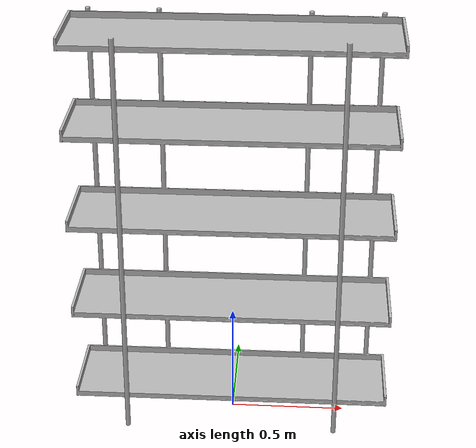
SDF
<sdf version="1.6">
	<model name="Bookcases_Oe43e7e39f537_lod0">
		<link name="main_link">
			<visual name="visual_RootNode">
				<geometry>
					<mesh>
						<uri>model://Bookcases_Oe43e7e39f537_lod0/meshes/visual_RootNode.dae</uri>
					</mesh>
				</geometry>
			</visual>
			<collision name="collision_RootNode_lod0_0">
				<geometry>
					<mesh>
						<uri>model://Bookcases_Oe43e7e39f537_lod0/meshes/collision_RootNode_lod0_0.dae</uri>
					</mesh>
				</geometry>
			</collision>
		</link>
	</model>
</sdf>
